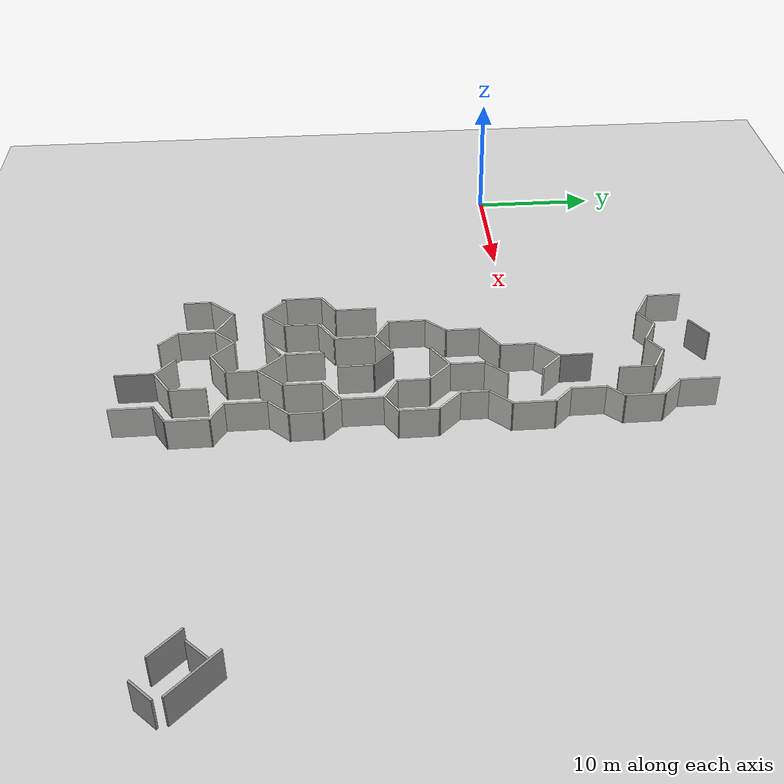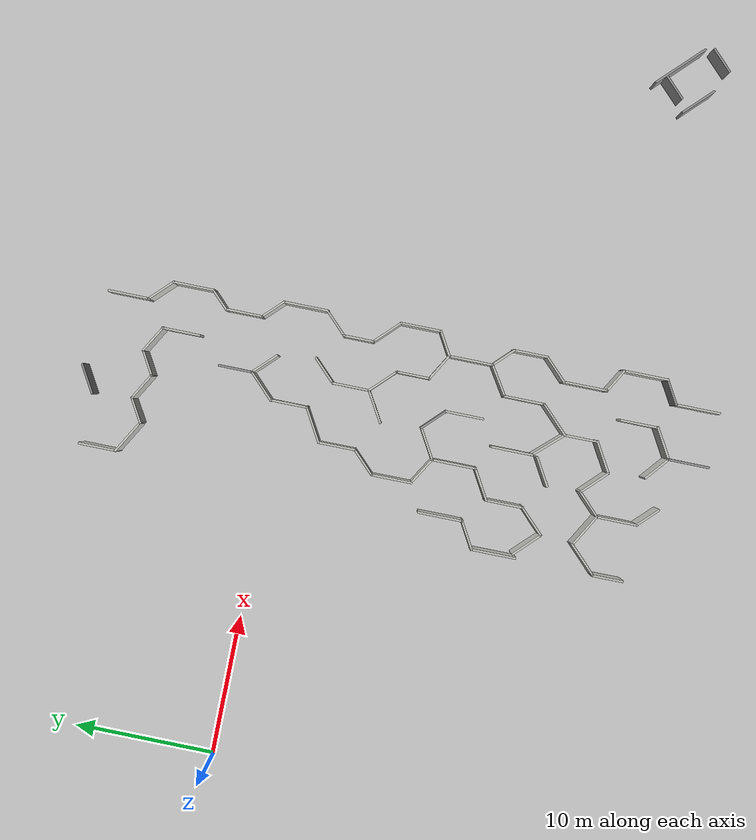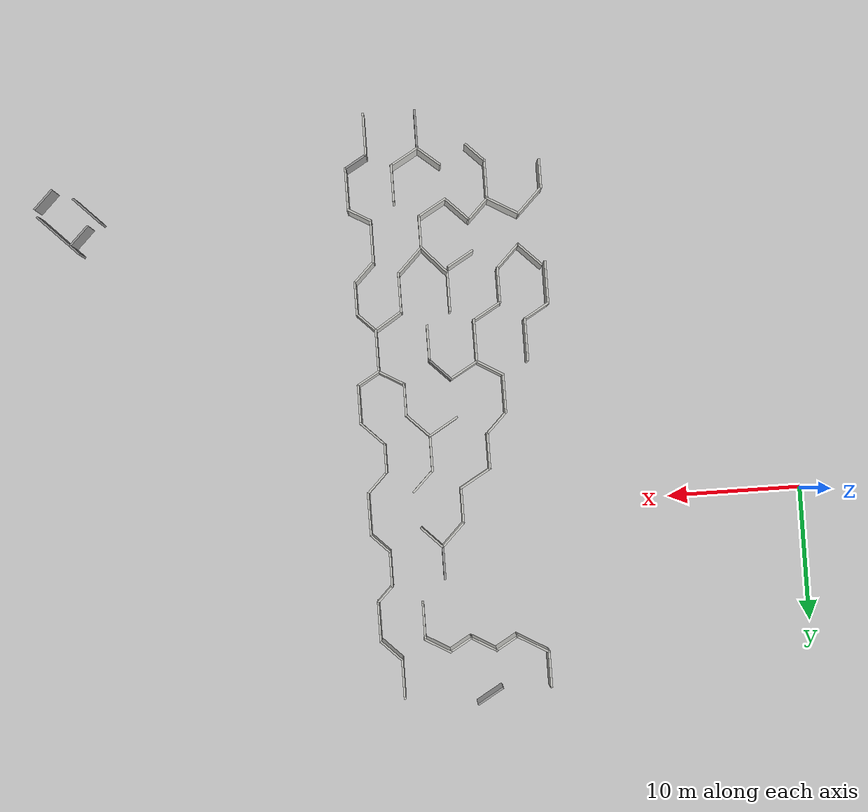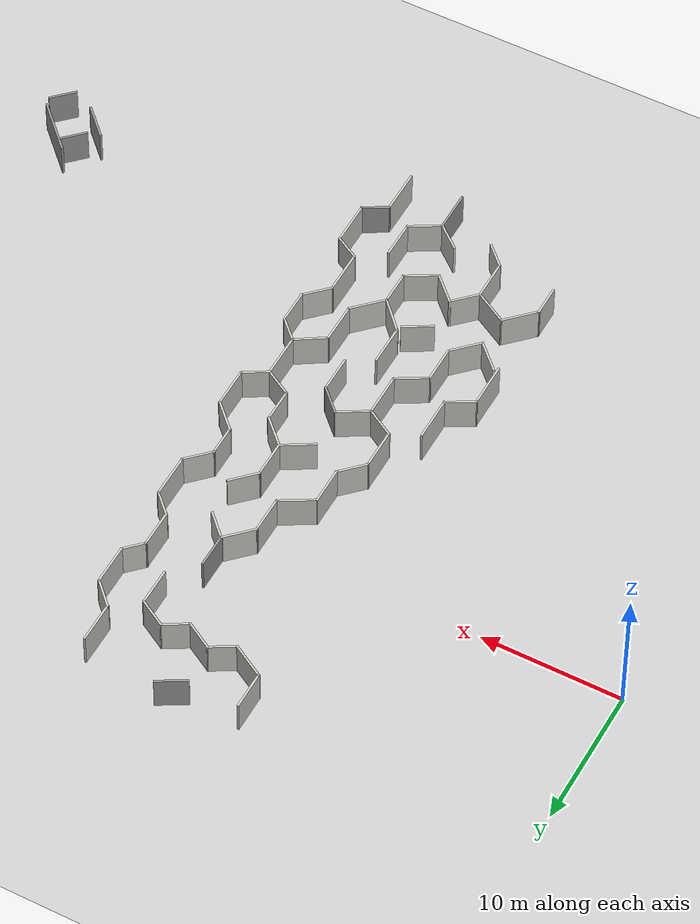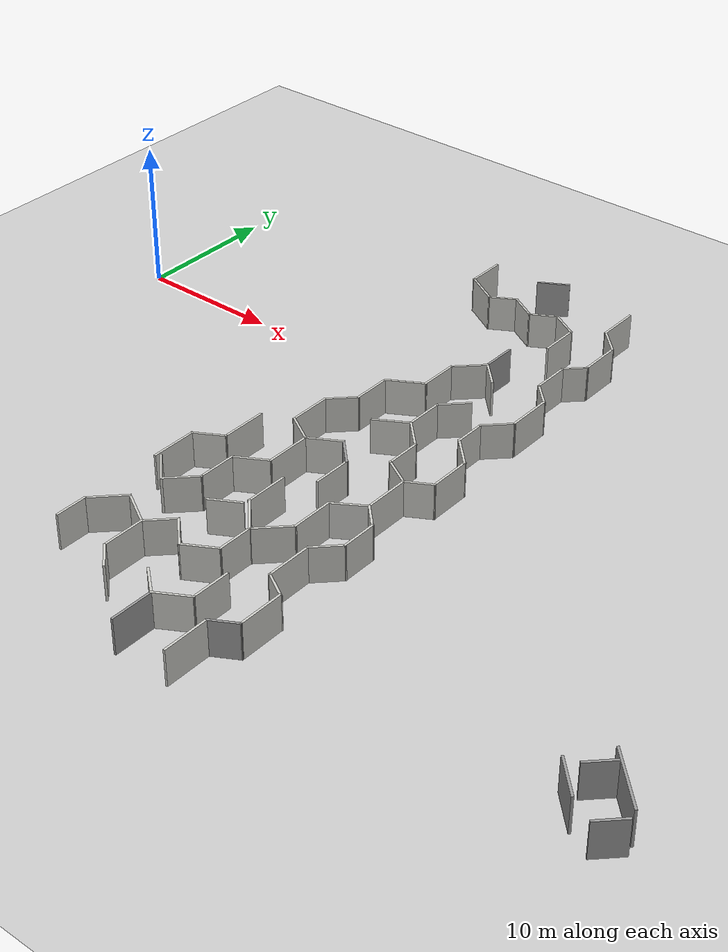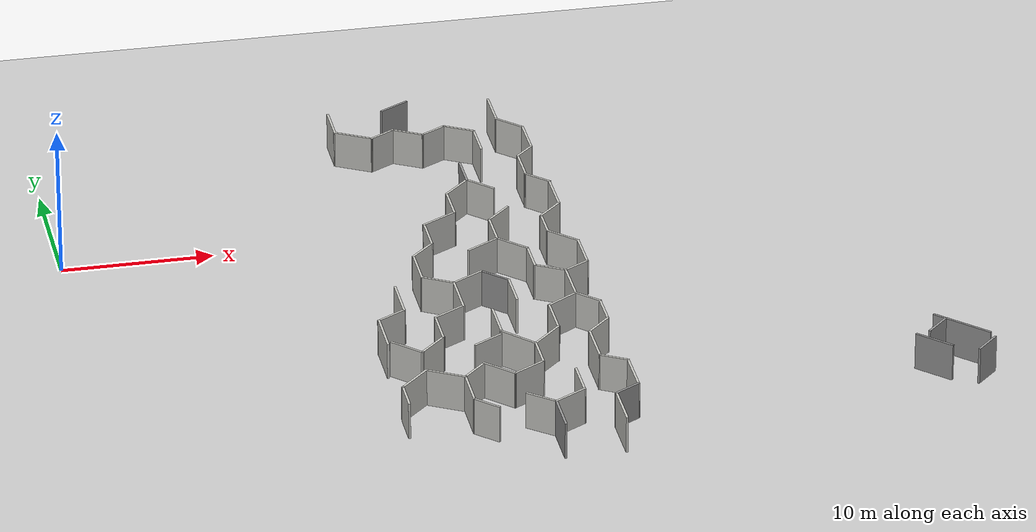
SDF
<sdf version="1.6">
 <world name="default">
  <model name="ground_plane">
   <pose>50 50 0 0 -0 0</pose>
   <static>1</static>
   <link name="link">
    <collision name="collision">
     <geometry><plane><normal>0 0 1</normal><size>100 100</size></plane></geometry>
     <surface><friction><ode><mu>100</mu><mu2>50</mu2></ode></friction></surface>
    </collision>
    <visual name="visual">
     <cast_shadows>0</cast_shadows>
     <geometry><plane><normal>0 0 1</normal><size>100 100</size></plane></geometry>
     <material>
      <script><uri>file://media/materials/scripts/gazebo.material</uri><name>Gazebo/Grey</name></script>
     </material>
    </visual>
   </link>
  </model>
  <model name="obs2_4">
   <pose>53.6513 -23.6227 0 0 -0 0</pose>
   <link name="Wall_0">
    <collision name="Wall_0_Collision">
     <geometry><box><size>2 0.15 2.5</size></box></geometry>
     <pose>0 0 1.25 0 -0 0</pose>
    </collision>
    <visual name="Wall_0_Visual">
     <pose>0 0 1.25 0 -0 0</pose>
     <geometry><box><size>2 0.15 2.5</size></box></geometry>
     <material>
      <script><uri>file://media/materials/scripts/gazebo.material</uri><name>Gazebo/Grey</name></script>
      <ambient>1 1 1 1</ambient>
     </material>
    </visual>
    <pose>-0.796332 1.10862 0 0 -0 0.785398</pose>
   </link>
   <link name="Wall_2">
    <collision name="Wall_2_Collision">
     <geometry><box><size>4.25 0.15 2.5</size></box></geometry>
     <pose>0 0 1.25 0 -0 0</pose>
    </collision>
    <visual name="Wall_2_Visual">
     <pose>0 0 1.25 0 -0 0</pose>
     <geometry><box><size>4.25 0.15 2.5</size></box></geometry>
     <material>
      <script><uri>file://media/materials/scripts/gazebo.material</uri><name>Gazebo/Grey</name></script>
      <ambient>1 1 1 1</ambient>
     </material>
    </visual>
    <pose>0.773928 0.982661 0 0 0 -0.785398</pose>
   </link>
   <link name="Wall_4">
    <collision name="Wall_4_Collision">
     <geometry><box><size>2.75 0.15 2.5</size></box></geometry>
     <pose>0 0 1.25 0 -0 0</pose>
    </collision>
    <visual name="Wall_4_Visual">
     <pose>0 0 1.25 0 -0 0</pose>
     <geometry><box><size>2.75 0.15 2.5</size></box></geometry>
     <material>
      <script><uri>file://media/materials/scripts/gazebo.material</uri><name>Gazebo/Grey</name></script>
      <ambient>1 1 1 1</ambient>
     </material>
    </visual>
    <pose>-1.45556 -0.740711 0 0 0 -0.785398</pose>
   </link>
   <link name="Wall_6">
    <collision name="Wall_6_Collision">
     <geometry><box><size>2 0.15 2.5</size></box></geometry>
     <pose>0 0 1.25 0 -0 0</pose>
    </collision>
    <visual name="Wall_6_Visual">
     <pose>0 0 1.25 0 -0 0</pose>
     <geometry><box><size>2 0.15 2.5</size></box></geometry>
     <material>
      <script><uri>file://media/materials/scripts/gazebo.material</uri><name>Gazebo/Grey</name></script>
      <ambient>1 1 1 1</ambient>
     </material>
    </visual>
    <pose>1.72073 -1.77816 0 0 -0 0.785398</pose>
   </link>
   <static>1</static>
  </model>
  <model name="maze_1">
   <pose>17.3845 3.82743 0 0 -0 1.57331</pose>
   <link name="Wall_100">
    <collision name="Wall_100_Collision">
     <geometry><box><size>2.75 0.15 2.5</size></box></geometry>
     <pose>0 0 1.25 0 -0 0</pose>
    </collision>
    <visual name="Wall_100_Visual">
     <pose>0 0 1.25 0 -0 0</pose>
     <geometry><box><size>2.75 0.15 2.5</size></box></geometry>
     <material>
      <script><uri>file://media/materials/scripts/gazebo.material</uri><name>Gazebo/CeilingTiled</name></script>
      <ambient>1 1 1 1</ambient>
     </material>
     <meta><layer>0</layer></meta>
    </visual>
    <pose>-22.8053 -10.8644 0 0 -0 -0.785398</pose>
   </link>
   <link name="Wall_101">
    <collision name="Wall_101_Collision">
     <geometry><box><size>3 0.15 2.5</size></box></geometry>
     <pose>0 0 1.25 0 -0 0</pose>
    </collision>
    <visual name="Wall_101_Visual">
     <pose>0 0 1.25 0 -0 0</pose>
     <geometry><box><size>3 0.15 2.5</size></box></geometry>
     <material>
      <script><uri>file://media/materials/scripts/gazebo.material</uri><name>Gazebo/CeilingTiled</name></script>
      <ambient>1 1 1 1</ambient>
     </material>
     <meta><layer>0</layer></meta>
    </visual>
    <pose>-20.4611 -11.7836 0 0 -0 0</pose>
   </link>
   <link name="Wall_102">
    <collision name="Wall_102_Collision">
     <geometry><box><size>2.50433 0.15 2.5</size></box></geometry>
     <pose>0 0 1.25 0 -0 0</pose>
    </collision>
    <visual name="Wall_102_Visual">
     <pose>0 0 1.25 0 -0 0</pose>
     <geometry><box><size>2.50433 0.15 2.5</size></box></geometry>
     <material>
      <script><uri>file://media/materials/scripts/gazebo.material</uri><name>Gazebo/CeilingTiled</name></script>
      <ambient>1 1 1 1</ambient>
     </material>
     <meta><layer>0</layer></meta>
    </visual>
    <pose>-18.4056 -12.7777 0 0 -0 -1.00558</pose>
   </link>
   <link name="Wall_104">
    <collision name="Wall_104_Collision">
     <geometry><box><size>3 0.15 2.5</size></box></geometry>
     <pose>0 0 1.25 0 -0 0</pose>
    </collision>
    <visual name="Wall_104_Visual">
     <pose>0 0 1.25 0 -0 0</pose>
     <geometry><box><size>3 0.15 2.5</size></box></geometry>
     <material>
      <script><uri>file://media/materials/scripts/gazebo.material</uri><name>Gazebo/CeilingTiled</name></script>
      <ambient>1 1 1 1</ambient>
     </material>
     <meta><layer>0</layer></meta>
    </visual>
    <pose>-20.321 -8.13238 0 0 -0 3.14159</pose>
   </link>
   <link name="Wall_105">
    <collision name="Wall_105_Collision">
     <geometry><box><size>2.83342 0.15 2.5</size></box></geometry>
     <pose>0 0 1.25 0 -0 0</pose>
    </collision>
    <visual name="Wall_105_Visual">
     <pose>0 0 1.25 0 -0 0</pose>
     <geometry><box><size>2.83342 0.15 2.5</size></box></geometry>
     <material>
      <script><uri>file://media/materials/scripts/gazebo.material</uri><name>Gazebo/CeilingTiled</name></script>
      <ambient>1 1 1 1</ambient>
     </material>
     <meta><layer>0</layer></meta>
    </visual>
    <pose>-22.7353 -9.03876 0 0 -0 -2.39989</pose>
   </link>
   <link name="Wall_107">
    <collision name="Wall_107_Collision">
     <geometry><box><size>2.25 0.15 2.5</size></box></geometry>
     <pose>0 0 1.25 0 -0 0</pose>
    </collision>
    <visual name="Wall_107_Visual">
     <pose>0 0 1.25 0 -0 0</pose>
     <geometry><box><size>2.25 0.15 2.5</size></box></geometry>
     <material>
      <script><uri>file://media/materials/scripts/gazebo.material</uri><name>Gazebo/CeilingTiled</name></script>
      <ambient>1 1 1 1</ambient>
     </material>
     <meta><layer>0</layer></meta>
    </visual>
    <pose>-22.6837 -7.08881 0 0 -0 -1.0472</pose>
   </link>
   <link name="Wall_109">
    <collision name="Wall_109_Collision">
     <geometry><box><size>2.75 0.15 2.5</size></box></geometry>
     <pose>0 0 1.25 0 -0 0</pose>
    </collision>
    <visual name="Wall_109_Visual">
     <pose>0 0 1.25 0 -0 0</pose>
     <geometry><box><size>2.75 0.15 2.5</size></box></geometry>
     <material>
      <script><uri>file://media/materials/scripts/gazebo.material</uri><name>Gazebo/CeilingTiled</name></script>
      <ambient>1 1 1 1</ambient>
     </material>
     <meta><layer>0</layer></meta>
    </visual>
    <pose>-16.5382 -9.92253 0 0 -0 0</pose>
   </link>
   <link name="Wall_110">
    <collision name="Wall_110_Collision">
     <geometry><box><size>2.25 0.15 2.5</size></box></geometry>
     <pose>0 0 1.25 0 -0 0</pose>
    </collision>
    <visual name="Wall_110_Visual">
     <pose>0 0 1.25 0 -0 0</pose>
     <geometry><box><size>2.25 0.15 2.5</size></box></geometry>
     <material>
      <script><uri>file://media/materials/scripts/gazebo.material</uri><name>Gazebo/Grey</name></script>
      <ambient>1 1 1 1</ambient>
     </material>
     <meta><layer>0</layer></meta>
    </visual>
    <pose>-14.4957 -9.18007 0 0 -0 0.785398</pose>
   </link>
   <link name="Wall_111">
    <collision name="Wall_111_Collision">
     <geometry><box><size>2.5 0.15 2.5</size></box></geometry>
     <pose>0 0 1.25 0 -0 0</pose>
    </collision>
    <visual name="Wall_111_Visual">
     <pose>0 0 1.25 0 -0 0</pose>
     <geometry><box><size>2.5 0.15 2.5</size></box></geometry>
     <material>
      <script><uri>file://media/materials/scripts/gazebo.material</uri><name>Gazebo/CeilingTiled</name></script>
      <ambient>1 1 1 1</ambient>
     </material>
     <meta><layer>0</layer></meta>
    </visual>
    <pose>-14.3408 -7.42003 0 0 -0 2.0944</pose>
   </link>
   <link name="Wall_112">
    <collision name="Wall_112_Collision">
     <geometry><box><size>3.25 0.15 2.5</size></box></geometry>
     <pose>0 0 1.25 0 -0 0</pose>
    </collision>
    <visual name="Wall_112_Visual">
     <pose>0 0 1.25 0 -0 0</pose>
     <geometry><box><size>3.25 0.15 2.5</size></box></geometry>
     <material>
      <script><uri>file://media/materials/scripts/gazebo.material</uri><name>Gazebo/CeilingTiled</name></script>
      <ambient>1 1 1 1</ambient>
     </material>
     <meta><layer>0</layer></meta>
    </visual>
    <pose>-16.4783 -6.40245 0 0 -0 3.14159</pose>
   </link>
   <link name="Wall_113">
    <collision name="Wall_113_Collision">
     <geometry><box><size>2.5 0.15 2.5</size></box></geometry>
     <pose>0 0 1.25 0 -0 0</pose>
    </collision>
    <visual name="Wall_113_Visual">
     <pose>0 0 1.25 0 -0 0</pose>
     <geometry><box><size>2.5 0.15 2.5</size></box></geometry>
     <material>
      <script><uri>file://media/materials/scripts/gazebo.material</uri><name>Gazebo/CeilingTiled</name></script>
      <ambient>1 1 1 1</ambient>
     </material>
     <meta><layer>0</layer></meta>
    </visual>
    <pose>-18.6158 -5.38487 0 0 -0 2.0944</pose>
   </link>
   <link name="Wall_114">
    <collision name="Wall_114_Collision">
     <geometry><box><size>2.75 0.15 2.5</size></box></geometry>
     <pose>0 0 1.25 0 -0 0</pose>
    </collision>
    <visual name="Wall_114_Visual">
     <pose>0 0 1.25 0 -0 0</pose>
     <geometry><box><size>2.75 0.15 2.5</size></box></geometry>
     <material>
      <script><uri>file://media/materials/scripts/gazebo.material</uri><name>Gazebo/CeilingTiled</name></script>
      <ambient>1 1 1 1</ambient>
     </material>
     <meta><layer>0</layer></meta>
    </visual>
    <pose>-20.5033 -4.36729 0 0 -0 3.14159</pose>
   </link>
   <link name="Wall_115">
    <collision name="Wall_115_Collision">
     <geometry><box><size>2.5 0.15 2.5</size></box></geometry>
     <pose>0 0 1.25 0 -0 0</pose>
    </collision>
    <visual name="Wall_115_Visual">
     <pose>0 0 1.25 0 -0 0</pose>
     <geometry><box><size>2.5 0.15 2.5</size></box></geometry>
     <material>
      <script><uri>file://media/materials/scripts/gazebo.material</uri><name>Gazebo/CeilingTiled</name></script>
      <ambient>1 1 1 1</ambient>
     </material>
     <meta><layer>0</layer></meta>
    </visual>
    <pose>-22.6341 -3.53644 0 0 -0 2.35619</pose>
   </link>
   <link name="Wall_116">
    <collision name="Wall_116_Collision">
     <geometry><box><size>2.5 0.15 2.5</size></box></geometry>
     <pose>0 0 1.25 0 -0 0</pose>
    </collision>
    <visual name="Wall_116_Visual">
     <pose>0 0 1.25 0 -0 0</pose>
     <geometry><box><size>2.5 0.15 2.5</size></box></geometry>
     <material>
      <script><uri>file://media/materials/scripts/gazebo.material</uri><name>Gazebo/CeilingTiled</name></script>
      <ambient>1 1 1 1</ambient>
     </material>
     <meta><layer>0</layer></meta>
    </visual>
    <pose>-22.6341 -1.87474 0 0 -0 0.785398</pose>
   </link>
   <link name="Wall_122">
    <collision name="Wall_122_Collision">
     <geometry><box><size>3.25 0.15 2.5</size></box></geometry>
     <pose>0 0 1.25 0 -0 0</pose>
    </collision>
    <visual name="Wall_122_Visual">
     <pose>0 0 1.25 0 -0 0</pose>
     <geometry><box><size>3.25 0.15 2.5</size></box></geometry>
     <material>
      <script><uri>file://media/materials/scripts/gazebo.material</uri><name>Gazebo/CeilingTiled</name></script>
      <ambient>1 1 1 1</ambient>
     </material>
     <meta><layer>0</layer></meta>
    </visual>
    <pose>-16.2961 -2.59917 0 0 -0 3.14159</pose>
   </link>
   <link name="Wall_123">
    <collision name="Wall_123_Collision">
     <geometry><box><size>2.25 0.15 2.5</size></box></geometry>
     <pose>0 0 1.25 0 -0 0</pose>
    </collision>
    <visual name="Wall_123_Visual">
     <pose>0 0 1.25 0 -0 0</pose>
     <geometry><box><size>2.25 0.15 2.5</size></box></geometry>
     <material>
      <script><uri>file://media/materials/scripts/gazebo.material</uri><name>Gazebo/CeilingTiled</name></script>
      <ambient>1 1 1 1</ambient>
     </material>
     <meta><layer>0</layer></meta>
    </visual>
    <pose>-18.3711 -1.68985 0 0 -0 2.0944</pose>
   </link>
   <link name="Wall_124">
    <collision name="Wall_124_Collision">
     <geometry><box><size>3.25 0.15 2.5</size></box></geometry>
     <pose>0 0 1.25 0 -0 0</pose>
    </collision>
    <visual name="Wall_124_Visual">
     <pose>0 0 1.25 0 -0 0</pose>
     <geometry><box><size>3.25 0.15 2.5</size></box></geometry>
     <material>
      <script><uri>file://media/materials/scripts/gazebo.material</uri><name>Gazebo/CeilingTiled</name></script>
      <ambient>1 1 1 1</ambient>
     </material>
     <meta><layer>0</layer></meta>
    </visual>
    <pose>-20.4461 -0.780521 0 0 -0 3.14159</pose>
   </link>
   <link name="Wall_126">
    <collision name="Wall_126_Collision">
     <geometry><box><size>2.5 0.15 2.5</size></box></geometry>
     <pose>0 0 1.25 0 -0 0</pose>
    </collision>
    <visual name="Wall_126_Visual">
     <pose>0 0 1.25 0 -0 0</pose>
     <geometry><box><size>2.5 0.15 2.5</size></box></geometry>
     <material>
      <script><uri>file://media/materials/scripts/gazebo.material</uri><name>Gazebo/Grey</name></script>
      <ambient>1 1 1 1</ambient>
     </material>
     <meta><layer>0</layer></meta>
    </visual>
    <pose>-0.135221 -9.92253 0 0 -0 3.14159</pose>
   </link>
   <link name="Wall_127">
    <collision name="Wall_127_Collision">
     <geometry><box><size>2.5 0.15 2.5</size></box></geometry>
     <pose>0 0 1.25 0 -0 0</pose>
    </collision>
    <visual name="Wall_127_Visual">
     <pose>0 0 1.25 0 -0 0</pose>
     <geometry><box><size>2.5 0.15 2.5</size></box></geometry>
     <material>
      <script><uri>file://media/materials/scripts/gazebo.material</uri><name>Gazebo/CeilingTiled</name></script>
      <ambient>1 1 1 1</ambient>
     </material>
     <meta><layer>0</layer></meta>
    </visual>
    <pose>-2.14107 -9.09168 0 0 -0 2.35619</pose>
   </link>
   <link name="Wall_128">
    <collision name="Wall_128_Collision">
     <geometry><box><size>2.75 0.15 2.5</size></box></geometry>
     <pose>0 0 1.25 0 -0 0</pose>
    </collision>
    <visual name="Wall_128_Visual">
     <pose>0 0 1.25 0 -0 0</pose>
     <geometry><box><size>2.75 0.15 2.5</size></box></geometry>
     <material>
      <script><uri>file://media/materials/scripts/gazebo.material</uri><name>Gazebo/CeilingTiled</name></script>
      <ambient>1 1 1 1</ambient>
     </material>
     <meta><layer>0</layer></meta>
    </visual>
    <pose>-4.27192 -8.26083 0 0 -0 3.14159</pose>
   </link>
   <link name="Wall_129">
    <collision name="Wall_129_Collision">
     <geometry><box><size>2.75 0.15 2.5</size></box></geometry>
     <pose>0 0 1.25 0 -0 0</pose>
    </collision>
    <visual name="Wall_129_Visual">
     <pose>0 0 1.25 0 -0 0</pose>
     <geometry><box><size>2.75 0.15 2.5</size></box></geometry>
     <material>
      <script><uri>file://media/materials/scripts/gazebo.material</uri><name>Gazebo/CeilingTiled</name></script>
      <ambient>1 1 1 1</ambient>
     </material>
     <meta><layer>0</layer></meta>
    </visual>
    <pose>-6.22192 -7.135 0 0 -0 2.0944</pose>
   </link>
   <link name="Wall_130">
    <collision name="Wall_130_Collision">
     <geometry><box><size>2.75 0.15 2.5</size></box></geometry>
     <pose>0 0 1.25 0 -0 0</pose>
    </collision>
    <visual name="Wall_130_Visual">
     <pose>0 0 1.25 0 -0 0</pose>
     <geometry><box><size>2.75 0.15 2.5</size></box></geometry>
     <material>
      <script><uri>file://media/materials/scripts/gazebo.material</uri><name>Gazebo/CeilingTiled</name></script>
      <ambient>1 1 1 1</ambient>
     </material>
     <meta><layer>0</layer></meta>
    </visual>
    <pose>-8.17192 -6.00916 0 0 -0 3.14159</pose>
   </link>
   <link name="Wall_131">
    <collision name="Wall_131_Collision">
     <geometry><box><size>2.25 0.15 2.5</size></box></geometry>
     <pose>0 0 1.25 0 -0 0</pose>
    </collision>
    <visual name="Wall_131_Visual">
     <pose>0 0 1.25 0 -0 0</pose>
     <geometry><box><size>2.25 0.15 2.5</size></box></geometry>
     <material>
      <script><uri>file://media/materials/scripts/gazebo.material</uri><name>Gazebo/CeilingTiled</name></script>
      <ambient>1 1 1 1</ambient>
     </material>
     <meta><layer>0</layer></meta>
    </visual>
    <pose>-10.2144 -5.2667 0 0 -0 2.35619</pose>
   </link>
   <link name="Wall_132">
    <collision name="Wall_132_Collision">
     <geometry><box><size>3 0.15 2.5</size></box></geometry>
     <pose>0 0 1.25 0 -0 0</pose>
    </collision>
    <visual name="Wall_132_Visual">
     <pose>0 0 1.25 0 -0 0</pose>
     <geometry><box><size>3 0.15 2.5</size></box></geometry>
     <material>
      <script><uri>file://media/materials/scripts/gazebo.material</uri><name>Gazebo/CeilingTiled</name></script>
      <ambient>1 1 1 1</ambient>
     </material>
     <meta><layer>0</layer></meta>
    </visual>
    <pose>-12.3818 -4.52424 0 0 -0 3.14159</pose>
   </link>
   <link name="Wall_133">
    <collision name="Wall_133_Collision">
     <geometry><box><size>2.33753 0.15 2.5</size></box></geometry>
     <pose>0 0 1.25 0 -0 0</pose>
    </collision>
    <visual name="Wall_133_Visual">
     <pose>0 0 1.25 0 -0 0</pose>
     <geometry><box><size>2.33753 0.15 2.5</size></box></geometry>
     <material>
      <script><uri>file://media/materials/scripts/gazebo.material</uri><name>Gazebo/CeilingTiled</name></script>
      <ambient>1 1 1 1</ambient>
     </material>
     <meta><layer>0</layer></meta>
    </visual>
    <pose>-14.3676 -5.46334 0 0 -0 -2.10906</pose>
   </link>
   <link name="Wall_135">
    <collision name="Wall_135_Collision">
     <geometry><box><size>2.22826 0.15 2.5</size></box></geometry>
     <pose>0 0 1.25 0 -0 0</pose>
    </collision>
    <visual name="Wall_135_Visual">
     <pose>0 0 1.25 0 -0 0</pose>
     <geometry><box><size>2.22826 0.15 2.5</size></box></geometry>
     <material>
      <script><uri>file://media/materials/scripts/gazebo.material</uri><name>Gazebo/CeilingTiled</name></script>
      <ambient>1 1 1 1</ambient>
     </material>
     <meta><layer>0</layer></meta>
    </visual>
    <pose>-2.04743 -10.6549 0 0 -0 0.782082</pose>
   </link>
   <link name="Wall_137">
    <collision name="Wall_137_Collision">
     <geometry><box><size>2.75 0.15 2.5</size></box></geometry>
     <pose>0 0 1.25 0 -0 0</pose>
    </collision>
    <visual name="Wall_137_Visual">
     <pose>0 0 1.25 0 -0 0</pose>
     <geometry><box><size>2.75 0.15 2.5</size></box></geometry>
     <material>
      <script><uri>file://media/materials/scripts/gazebo.material</uri><name>Gazebo/CeilingTiled</name></script>
      <ambient>1 1 1 1</ambient>
     </material>
     <meta><layer>0</layer></meta>
    </visual>
    <pose>4.12993 -11.7127 0 0 -0 0</pose>
   </link>
   <link name="Wall_138">
    <collision name="Wall_138_Collision">
     <geometry><box><size>2.25 0.15 2.5</size></box></geometry>
     <pose>0 0 1.25 0 -0 0</pose>
    </collision>
    <visual name="Wall_138_Visual">
     <pose>0 0 1.25 0 -0 0</pose>
     <geometry><box><size>2.25 0.15 2.5</size></box></geometry>
     <material>
      <script><uri>file://media/materials/scripts/gazebo.material</uri><name>Gazebo/CeilingTiled</name></script>
      <ambient>1 1 1 1</ambient>
     </material>
     <meta><layer>0</layer></meta>
    </visual>
    <pose>5.95493 -10.8034 0 0 -0 1.0472</pose>
   </link>
   <link name="Wall_139">
    <collision name="Wall_139_Collision">
     <geometry><box><size>2 0.15 2.5</size></box></geometry>
     <pose>0 0 1.25 0 -0 0</pose>
    </collision>
    <visual name="Wall_139_Visual">
     <pose>0 0 1.25 0 -0 0</pose>
     <geometry><box><size>2 0.15 2.5</size></box></geometry>
     <material>
      <script><uri>file://media/materials/scripts/gazebo.material</uri><name>Gazebo/CeilingTiled</name></script>
      <ambient>1 1 1 1</ambient>
     </material>
     <meta><layer>0</layer></meta>
    </visual>
    <pose>6.01743 -9.09296 0 0 -0 2.0944</pose>
   </link>
   <link name="Wall_140">
    <collision name="Wall_140_Collision">
     <geometry><box><size>2.25 0.15 2.5</size></box></geometry>
     <pose>0 0 1.25 0 -0 0</pose>
    </collision>
    <visual name="Wall_140_Visual">
     <pose>0 0 1.25 0 -0 0</pose>
     <geometry><box><size>2.25 0.15 2.5</size></box></geometry>
     <material>
      <script><uri>file://media/materials/scripts/gazebo.material</uri><name>Gazebo/CeilingTiled</name></script>
      <ambient>1 1 1 1</ambient>
     </material>
     <meta><layer>0</layer></meta>
    </visual>
    <pose>6.07993 -7.38256 0 0 -0 1.0472</pose>
   </link>
   <link name="Wall_141">
    <collision name="Wall_141_Collision">
     <geometry><box><size>2 0.15 2.5</size></box></geometry>
     <pose>0 0 1.25 0 -0 0</pose>
    </collision>
    <visual name="Wall_141_Visual">
     <pose>0 0 1.25 0 -0 0</pose>
     <geometry><box><size>2 0.15 2.5</size></box></geometry>
     <material>
      <script><uri>file://media/materials/scripts/gazebo.material</uri><name>Gazebo/CeilingTiled</name></script>
      <ambient>1 1 1 1</ambient>
     </material>
     <meta><layer>0</layer></meta>
    </visual>
    <pose>6.14243 -5.67216 0 0 -0 2.0944</pose>
   </link>
   <link name="Wall_142">
    <collision name="Wall_142_Collision">
     <geometry><box><size>2.75 0.15 2.5</size></box></geometry>
     <pose>0 0 1.25 0 -0 0</pose>
    </collision>
    <visual name="Wall_142_Visual">
     <pose>0 0 1.25 0 -0 0</pose>
     <geometry><box><size>2.75 0.15 2.5</size></box></geometry>
     <material>
      <script><uri>file://media/materials/scripts/gazebo.material</uri><name>Gazebo/CeilingTiled</name></script>
      <ambient>1 1 1 1</ambient>
     </material>
     <meta><layer>0</layer></meta>
    </visual>
    <pose>6.32993 -3.74525 0 0 -0 1.0472</pose>
   </link>
   <link name="Wall_143">
    <collision name="Wall_143_Collision">
     <geometry><box><size>2.75 0.15 2.5</size></box></geometry>
     <pose>0 0 1.25 0 -0 0</pose>
    </collision>
    <visual name="Wall_143_Visual">
     <pose>0 0 1.25 0 -0 0</pose>
     <geometry><box><size>2.75 0.15 2.5</size></box></geometry>
     <material>
      <script><uri>file://media/materials/scripts/gazebo.material</uri><name>Gazebo/CeilingTiled</name></script>
      <ambient>1 1 1 1</ambient>
     </material>
     <meta><layer>0</layer></meta>
    </visual>
    <pose>8.27993 -2.61942 0 0 -0 0</pose>
   </link>
   <link name="Wall_15">
    <collision name="Wall_15_Collision">
     <geometry><box><size>3 0.15 2.5</size></box></geometry>
     <pose>0 0 1.25 0 -0 0</pose>
    </collision>
    <visual name="Wall_15_Visual">
     <pose>0 0 1.25 0 -0 0</pose>
     <geometry><box><size>3 0.15 2.5</size></box></geometry>
     <material>
      <script><uri>file://media/materials/scripts/gazebo.material</uri><name>Gazebo/CeilingTiled</name></script>
      <ambient>1 1 1 1</ambient>
     </material>
     <meta><layer>0</layer></meta>
    </visual>
    <pose>8.24595 -13.5355 0 0 -0 3.14159</pose>
   </link>
   <link name="Wall_16">
    <collision name="Wall_16_Collision">
     <geometry><box><size>2.25 0.15 2.5</size></box></geometry>
     <pose>0 0 1.25 0 -0 0</pose>
    </collision>
    <visual name="Wall_16_Visual">
     <pose>0 0 1.25 0 -0 0</pose>
     <geometry><box><size>2.25 0.15 2.5</size></box></geometry>
     <material>
      <script><uri>file://media/materials/scripts/gazebo.material</uri><name>Gazebo/CeilingTiled</name></script>
      <ambient>1 1 1 1</ambient>
     </material>
     <meta><layer>0</layer></meta>
    </visual>
    <pose>6.07849 -14.2779 0 0 -0 -2.35619</pose>
   </link>
   <link name="Wall_17">
    <collision name="Wall_17_Collision">
     <geometry><box><size>3 0.15 2.5</size></box></geometry>
     <pose>0 0 1.25 0 -0 0</pose>
    </collision>
    <visual name="Wall_17_Visual">
     <pose>0 0 1.25 0 -0 0</pose>
     <geometry><box><size>3 0.15 2.5</size></box></geometry>
     <material>
      <script><uri>file://media/materials/scripts/gazebo.material</uri><name>Gazebo/CeilingTiled</name></script>
      <ambient>1 1 1 1</ambient>
     </material>
     <meta><layer>0</layer></meta>
    </visual>
    <pose>3.91103 -15.0204 0 0 -0 3.14159</pose>
   </link>
   <link name="Wall_18">
    <collision name="Wall_18_Collision">
     <geometry><box><size>1.75 0.15 2.5</size></box></geometry>
     <pose>0 0 1.25 0 -0 0</pose>
    </collision>
    <visual name="Wall_18_Visual">
     <pose>0 0 1.25 0 -0 0</pose>
     <geometry><box><size>1.75 0.15 2.5</size></box></geometry>
     <material>
      <script><uri>file://media/materials/scripts/gazebo.material</uri><name>Gazebo/CeilingTiled</name></script>
      <ambient>1 1 1 1</ambient>
     </material>
     <meta><layer>0</layer></meta>
    </visual>
    <pose>1.92034 -14.4547 0 0 -0 2.35619</pose>
   </link>
   <link name="Wall_19">
    <collision name="Wall_19_Collision">
     <geometry><box><size>2.75 0.15 2.5</size></box></geometry>
     <pose>0 0 1.25 0 -0 0</pose>
    </collision>
    <visual name="Wall_19_Visual">
     <pose>0 0 1.25 0 -0 0</pose>
     <geometry><box><size>2.75 0.15 2.5</size></box></geometry>
     <material>
      <script><uri>file://media/materials/scripts/gazebo.material</uri><name>Gazebo/CeilingTiled</name></script>
      <ambient>1 1 1 1</ambient>
     </material>
     <meta><layer>0</layer></meta>
    </visual>
    <pose>0.054658 -13.889 0 0 -0 3.14159</pose>
   </link>
   <link name="Wall_20">
    <collision name="Wall_20_Collision">
     <geometry><box><size>2 0.15 2.5</size></box></geometry>
     <pose>0 0 1.25 0 -0 0</pose>
    </collision>
    <visual name="Wall_20_Visual">
     <pose>0 0 1.25 0 -0 0</pose>
     <geometry><box><size>2 0.15 2.5</size></box></geometry>
     <material>
      <script><uri>file://media/materials/scripts/gazebo.material</uri><name>Gazebo/CeilingTiled</name></script>
      <ambient>1 1 1 1</ambient>
     </material>
     <meta><layer>0</layer></meta>
    </visual>
    <pose>-1.89942 -14.5431 0 0 -0 -2.35619</pose>
   </link>
   <link name="Wall_21">
    <collision name="Wall_21_Collision">
     <geometry><box><size>3.25 0.15 2.5</size></box></geometry>
     <pose>0 0 1.25 0 -0 0</pose>
    </collision>
    <visual name="Wall_21_Visual">
     <pose>0 0 1.25 0 -0 0</pose>
     <geometry><box><size>3.25 0.15 2.5</size></box></geometry>
     <material>
      <script><uri>file://media/materials/scripts/gazebo.material</uri><name>Gazebo/CeilingTiled</name></script>
      <ambient>1 1 1 1</ambient>
     </material>
     <meta><layer>0</layer></meta>
    </visual>
    <pose>-4.10349 -15.1972 0 0 -0 3.14159</pose>
   </link>
   <link name="Wall_22">
    <collision name="Wall_22_Collision">
     <geometry><box><size>2.25 0.15 2.5</size></box></geometry>
     <pose>0 0 1.25 0 -0 0</pose>
    </collision>
    <visual name="Wall_22_Visual">
     <pose>0 0 1.25 0 -0 0</pose>
     <geometry><box><size>2.25 0.15 2.5</size></box></geometry>
     <material>
      <script><uri>file://media/materials/scripts/gazebo.material</uri><name>Gazebo/CeilingTiled</name></script>
      <ambient>1 1 1 1</ambient>
     </material>
     <meta><layer>0</layer></meta>
    </visual>
    <pose>-6.39595 -14.4547 0 0 -0 2.35619</pose>
   </link>
   <link name="Wall_23">
    <collision name="Wall_23_Collision">
     <geometry><box><size>2.25 0.15 2.5</size></box></geometry>
     <pose>0 0 1.25 0 -0 0</pose>
    </collision>
    <visual name="Wall_23_Visual">
     <pose>0 0 1.25 0 -0 0</pose>
     <geometry><box><size>2.25 0.15 2.5</size></box></geometry>
     <material>
      <script><uri>file://media/materials/scripts/gazebo.material</uri><name>Gazebo/CeilingTiled</name></script>
      <ambient>1 1 1 1</ambient>
     </material>
     <meta><layer>0</layer></meta>
    </visual>
    <pose>-8.18841 -13.7122 0 0 -0 3.14159</pose>
   </link>
   <link name="Wall_24">
    <collision name="Wall_24_Collision">
     <geometry><box><size>2.5 0.15 2.5</size></box></geometry>
     <pose>0 0 1.25 0 -0 0</pose>
    </collision>
    <visual name="Wall_24_Visual">
     <pose>0 0 1.25 0 -0 0</pose>
     <geometry><box><size>2.5 0.15 2.5</size></box></geometry>
     <material>
      <script><uri>file://media/materials/scripts/gazebo.material</uri><name>Gazebo/CeilingTiled</name></script>
      <ambient>1 1 1 1</ambient>
     </material>
     <meta><layer>0</layer></meta>
    </visual>
    <pose>-10.0693 -14.5431 0 0 -0 -2.35619</pose>
   </link>
   <link name="Wall_25">
    <collision name="Wall_25_Collision">
     <geometry><box><size>3 0.15 2.5</size></box></geometry>
     <pose>0 0 1.25 0 -0 0</pose>
    </collision>
    <visual name="Wall_25_Visual">
     <pose>0 0 1.25 0 -0 0</pose>
     <geometry><box><size>3 0.15 2.5</size></box></geometry>
     <material>
      <script><uri>file://media/materials/scripts/gazebo.material</uri><name>Gazebo/CeilingTiled</name></script>
      <ambient>1 1 1 1</ambient>
     </material>
     <meta><layer>0</layer></meta>
    </visual>
    <pose>-12.3251 -15.3739 0 0 -0 3.14159</pose>
   </link>
   <link name="Wall_26">
    <collision name="Wall_26_Collision">
     <geometry><box><size>2 0.15 2.5</size></box></geometry>
     <pose>0 0 1.25 0 -0 0</pose>
    </collision>
    <visual name="Wall_26_Visual">
     <pose>0 0 1.25 0 -0 0</pose>
     <geometry><box><size>2 0.15 2.5</size></box></geometry>
     <material>
      <script><uri>file://media/materials/scripts/gazebo.material</uri><name>Gazebo/CeilingTiled</name></script>
      <ambient>1 1 1 1</ambient>
     </material>
     <meta><layer>0</layer></meta>
    </visual>
    <pose>-14.2126 -14.5729 0 0 -0 2.0944</pose>
   </link>
   <link name="Wall_27">
    <collision name="Wall_27_Collision">
     <geometry><box><size>2.25 0.15 2.5</size></box></geometry>
     <pose>0 0 1.25 0 -0 0</pose>
    </collision>
    <visual name="Wall_27_Visual">
     <pose>0 0 1.25 0 -0 0</pose>
     <geometry><box><size>2.25 0.15 2.5</size></box></geometry>
     <material>
      <script><uri>file://media/materials/scripts/gazebo.material</uri><name>Gazebo/CeilingTiled</name></script>
      <ambient>1 1 1 1</ambient>
     </material>
     <meta><layer>0</layer></meta>
    </visual>
    <pose>-14.1501 -12.8625 0 0 -0 1.0472</pose>
   </link>
   <link name="Wall_28">
    <collision name="Wall_28_Collision">
     <geometry><box><size>2.5 0.15 2.5</size></box></geometry>
     <pose>0 0 1.25 0 -0 0</pose>
    </collision>
    <visual name="Wall_28_Visual">
     <pose>0 0 1.25 0 -0 0</pose>
     <geometry><box><size>2.5 0.15 2.5</size></box></geometry>
     <material>
      <script><uri>file://media/materials/scripts/gazebo.material</uri><name>Gazebo/CeilingTiled</name></script>
      <ambient>1 1 1 1</ambient>
     </material>
     <meta><layer>0</layer></meta>
    </visual>
    <pose>-12.4501 -11.9531 0 0 -0 0</pose>
   </link>
   <link name="Wall_29">
    <collision name="Wall_29_Collision">
     <geometry><box><size>2.5 0.15 2.5</size></box></geometry>
     <pose>0 0 1.25 0 -0 0</pose>
    </collision>
    <visual name="Wall_29_Visual">
     <pose>0 0 1.25 0 -0 0</pose>
     <geometry><box><size>2.5 0.15 2.5</size></box></geometry>
     <material>
      <script><uri>file://media/materials/scripts/gazebo.material</uri><name>Gazebo/CeilingTiled</name></script>
      <ambient>1 1 1 1</ambient>
     </material>
     <meta><layer>0</layer></meta>
    </visual>
    <pose>-10.4443 -11.1223 0 0 -0 0.785398</pose>
   </link>
   <link name="Wall_30">
    <collision name="Wall_30_Collision">
     <geometry><box><size>2.75 0.15 2.5</size></box></geometry>
     <pose>0 0 1.25 0 -0 0</pose>
    </collision>
    <visual name="Wall_30_Visual">
     <pose>0 0 1.25 0 -0 0</pose>
     <geometry><box><size>2.75 0.15 2.5</size></box></geometry>
     <material>
      <script><uri>file://media/materials/scripts/gazebo.material</uri><name>Gazebo/CeilingTiled</name></script>
      <ambient>1 1 1 1</ambient>
     </material>
     <meta><layer>0</layer></meta>
    </visual>
    <pose>-8.31341 -10.2914 0 0 -0 0</pose>
   </link>
   <link name="Wall_31">
    <collision name="Wall_31_Collision">
     <geometry><box><size>2.25 0.15 2.5</size></box></geometry>
     <pose>0 0 1.25 0 -0 0</pose>
    </collision>
    <visual name="Wall_31_Visual">
     <pose>0 0 1.25 0 -0 0</pose>
     <geometry><box><size>2.25 0.15 2.5</size></box></geometry>
     <material>
      <script><uri>file://media/materials/scripts/gazebo.material</uri><name>Gazebo/CeilingTiled</name></script>
      <ambient>1 1 1 1</ambient>
     </material>
     <meta><layer>0</layer></meta>
    </visual>
    <pose>-6.27095 -11.0339 0 0 -0 -0.785398</pose>
   </link>
   <link name="Wall_33">
    <collision name="Wall_33_Collision">
     <geometry><box><size>2.56291 0.15 2.5</size></box></geometry>
     <pose>0 0 1.25 0 -0 0</pose>
    </collision>
    <visual name="Wall_33_Visual">
     <pose>0 0 1.25 0 -0 0</pose>
     <geometry><box><size>2.56291 0.15 2.5</size></box></geometry>
     <material>
      <script><uri>file://media/materials/scripts/gazebo.material</uri><name>Gazebo/CeilingTiled</name></script>
      <ambient>1 1 1 1</ambient>
     </material>
     <meta><layer>0</layer></meta>
    </visual>
    <pose>-10.2269 -9.25259 0 0 -0 -1.03738</pose>
   </link>
   <link name="Wall_35">
    <collision name="Wall_35_Collision">
     <geometry><box><size>3.25 0.15 2.5</size></box></geometry>
     <pose>0 0 1.25 0 -0 0</pose>
    </collision>
    <visual name="Wall_35_Visual">
     <pose>0 0 1.25 0 -0 0</pose>
     <geometry><box><size>3.25 0.15 2.5</size></box></geometry>
     <material>
      <script><uri>file://media/materials/scripts/gazebo.material</uri><name>Gazebo/CeilingTiled</name></script>
      <ambient>1 1 1 1</ambient>
     </material>
     <meta><layer>0</layer></meta>
    </visual>
    <pose>-16.2251 -13.7718 0 0 -0 3.14159</pose>
   </link>
   <link name="Wall_36">
    <collision name="Wall_36_Collision">
     <geometry><box><size>2 0.15 2.5</size></box></geometry>
     <pose>0 0 1.25 0 -0 0</pose>
    </collision>
    <visual name="Wall_36_Visual">
     <pose>0 0 1.25 0 -0 0</pose>
     <geometry><box><size>2 0.15 2.5</size></box></geometry>
     <material>
      <script><uri>file://media/materials/scripts/gazebo.material</uri><name>Gazebo/CeilingTiled</name></script>
      <ambient>1 1 1 1</ambient>
     </material>
     <meta><layer>0</layer></meta>
    </visual>
    <pose>-18.4292 -14.4259 0 0 -0 -2.35619</pose>
   </link>
   <link name="Wall_37">
    <collision name="Wall_37_Collision">
     <geometry><box><size>2.5 0.15 2.5</size></box></geometry>
     <pose>0 0 1.25 0 -0 0</pose>
    </collision>
    <visual name="Wall_37_Visual">
     <pose>0 0 1.25 0 -0 0</pose>
     <geometry><box><size>2.5 0.15 2.5</size></box></geometry>
     <material>
      <script><uri>file://media/materials/scripts/gazebo.material</uri><name>Gazebo/CeilingTiled</name></script>
      <ambient>1 1 1 1</ambient>
     </material>
     <meta><layer>0</layer></meta>
    </visual>
    <pose>-20.2583 -15.0799 0 0 -0 3.14159</pose>
   </link>
   <link name="Wall_38">
    <collision name="Wall_38_Collision">
     <geometry><box><size>2.25 0.15 2.5</size></box></geometry>
     <pose>0 0 1.25 0 -0 0</pose>
    </collision>
    <visual name="Wall_38_Visual">
     <pose>0 0 1.25 0 -0 0</pose>
     <geometry><box><size>2.25 0.15 2.5</size></box></geometry>
     <material>
      <script><uri>file://media/materials/scripts/gazebo.material</uri><name>Gazebo/CeilingTiled</name></script>
      <ambient>1 1 1 1</ambient>
     </material>
     <meta><layer>0</layer></meta>
    </visual>
    <pose>-22.1757 -14.3375 0 0 -0 2.35619</pose>
   </link>
   <link name="Wall_39">
    <collision name="Wall_39_Collision">
     <geometry><box><size>3.25 0.15 2.5</size></box></geometry>
     <pose>0 0 1.25 0 -0 0</pose>
    </collision>
    <visual name="Wall_39_Visual">
     <pose>0 0 1.25 0 -0 0</pose>
     <geometry><box><size>3.25 0.15 2.5</size></box></geometry>
     <material>
      <script><uri>file://media/materials/scripts/gazebo.material</uri><name>Gazebo/CeilingTiled</name></script>
      <ambient>1 1 1 1</ambient>
     </material>
     <meta><layer>0</layer></meta>
    </visual>
    <pose>-24.4682 -13.595 0 0 -0 3.14159</pose>
   </link>
   <link name="Wall_40">
    <collision name="Wall_40_Collision">
     <geometry><box><size>2 0.15 2.5</size></box></geometry>
     <pose>0 0 1.25 0 -0 0</pose>
    </collision>
    <visual name="Wall_40_Visual">
     <pose>0 0 1.25 0 -0 0</pose>
     <geometry><box><size>2 0.15 2.5</size></box></geometry>
     <material>
      <script><uri>file://media/materials/scripts/gazebo.material</uri><name>Gazebo/CeilingTiled</name></script>
      <ambient>1 1 1 1</ambient>
     </material>
     <meta><layer>0</layer></meta>
    </visual>
    <pose>-26.4807 -14.3961 0 0 -0 -2.0944</pose>
   </link>
   <link name="Wall_41">
    <collision name="Wall_41_Collision">
     <geometry><box><size>3.25 0.15 2.5</size></box></geometry>
     <pose>0 0 1.25 0 -0 0</pose>
    </collision>
    <visual name="Wall_41_Visual">
     <pose>0 0 1.25 0 -0 0</pose>
     <geometry><box><size>3.25 0.15 2.5</size></box></geometry>
     <material>
      <script><uri>file://media/materials/scripts/gazebo.material</uri><name>Gazebo/CeilingTiled</name></script>
      <ambient>1 1 1 1</ambient>
     </material>
     <meta><layer>0</layer></meta>
    </visual>
    <pose>-28.4932 -15.1972 0 0 -0 3.14159</pose>
   </link>
   <link name="Wall_42">
    <collision name="Wall_42_Collision">
     <geometry><box><size>2 0.15 2.5</size></box></geometry>
     <pose>0 0 1.25 0 -0 0</pose>
    </collision>
    <visual name="Wall_42_Visual">
     <pose>0 0 1.25 0 -0 0</pose>
     <geometry><box><size>2 0.15 2.5</size></box></geometry>
     <material>
      <script><uri>file://media/materials/scripts/gazebo.material</uri><name>Gazebo/Grey</name></script>
      <ambient>1 1 1 1</ambient>
     </material>
     <meta><layer>0</layer></meta>
    </visual>
    <pose>-30.5057 -14.3961 0 0 -0 2.0944</pose>
   </link>
   <link name="Wall_43">
    <collision name="Wall_43_Collision">
     <geometry><box><size>3.25 0.15 2.5</size></box></geometry>
     <pose>0 0 1.25 0 -0 0</pose>
    </collision>
    <visual name="Wall_43_Visual">
     <pose>0 0 1.25 0 -0 0</pose>
     <geometry><box><size>3.25 0.15 2.5</size></box></geometry>
     <material>
      <script><uri>file://media/materials/scripts/gazebo.material</uri><name>Gazebo/CeilingTiled</name></script>
      <ambient>1 1 1 1</ambient>
     </material>
     <meta><layer>0</layer></meta>
    </visual>
    <pose>-32.5182 -13.595 0 0 -0 3.14159</pose>
   </link>
   <link name="Wall_5">
    <collision name="Wall_5_Collision">
     <geometry><box><size>2.25 0.15 2.5</size></box></geometry>
     <pose>0 0 1.25 0 -0 0</pose>
    </collision>
    <visual name="Wall_5_Visual">
     <pose>0 0 1.25 0 -0 0</pose>
     <geometry><box><size>2.25 0.15 2.5</size></box></geometry>
     <material>
      <script><uri>file://media/materials/scripts/gazebo.material</uri><name>Gazebo/Grey</name></script>
      <ambient>1 1 1 1</ambient>
     </material>
     <meta><layer>0</layer></meta>
    </visual>
    <pose>9.94595 -7.17018 0 0 -0 -1.0472</pose>
   </link>
   <link name="Wall_53">
    <collision name="Wall_53_Collision">
     <geometry><box><size>3 0.15 2.5</size></box></geometry>
     <pose>0 0 1.25 0 -0 0</pose>
    </collision>
    <visual name="Wall_53_Visual">
     <pose>0 0 1.25 0 -0 0</pose>
     <geometry><box><size>3 0.15 2.5</size></box></geometry>
     <material>
      <script><uri>file://media/materials/scripts/gazebo.material</uri><name>Gazebo/Grey</name></script>
      <ambient>1 1 1 1</ambient>
     </material>
     <meta><layer>0</layer></meta>
    </visual>
    <pose>-32.6375 -9.71593 0 0 -0 0</pose>
   </link>
   <link name="Wall_54">
    <collision name="Wall_54_Collision">
     <geometry><box><size>2.5 0.15 2.5</size></box></geometry>
     <pose>0 0 1.25 0 -0 0</pose>
    </collision>
    <visual name="Wall_54_Visual">
     <pose>0 0 1.25 0 -0 0</pose>
     <geometry><box><size>2.5 0.15 2.5</size></box></geometry>
     <material>
      <script><uri>file://media/materials/scripts/gazebo.material</uri><name>Gazebo/CeilingTiled</name></script>
      <ambient>1 1 1 1</ambient>
     </material>
     <meta><layer>0</layer></meta>
    </visual>
    <pose>-30.625 -10.7335 0 0 -0 -1.0472</pose>
   </link>
   <link name="Wall_55">
    <collision name="Wall_55_Collision">
     <geometry><box><size>2.75 0.15 2.5</size></box></geometry>
     <pose>0 0 1.25 0 -0 0</pose>
    </collision>
    <visual name="Wall_55_Visual">
     <pose>0 0 1.25 0 -0 0</pose>
     <geometry><box><size>2.75 0.15 2.5</size></box></geometry>
     <material>
      <script><uri>file://media/materials/scripts/gazebo.material</uri><name>Gazebo/CeilingTiled</name></script>
      <ambient>1 1 1 1</ambient>
     </material>
     <meta><layer>0</layer></meta>
    </visual>
    <pose>-28.7375 -11.7511 0 0 -0 0</pose>
   </link>
   <link name="Wall_57">
    <collision name="Wall_57_Collision">
     <geometry><box><size>2.2189 0.15 2.5</size></box></geometry>
     <pose>0 0 1.25 0 -0 0</pose>
    </collision>
    <visual name="Wall_57_Visual">
     <pose>0 0 1.25 0 -0 0</pose>
     <geometry><box><size>2.2189 0.15 2.5</size></box></geometry>
     <material>
      <script><uri>file://media/materials/scripts/gazebo.material</uri><name>Gazebo/CeilingTiled</name></script>
      <ambient>1 1 1 1</ambient>
     </material>
     <meta><layer>0</layer></meta>
    </visual>
    <pose>-30.5468 -8.92415 0 0 -0 -2.26992</pose>
   </link>
   <link name="Wall_88">
    <collision name="Wall_88_Collision">
     <geometry><box><size>2.25 0.15 2.5</size></box></geometry>
     <pose>0 0 1.25 0 -0 0</pose>
    </collision>
    <visual name="Wall_88_Visual">
     <pose>0 0 1.25 0 -0 0</pose>
     <geometry><box><size>2.25 0.15 2.5</size></box></geometry>
     <material>
      <script><uri>file://media/materials/scripts/gazebo.material</uri><name>Gazebo/CeilingTiled</name></script>
      <ambient>1 1 1 1</ambient>
     </material>
     <meta><layer>0</layer></meta>
    </visual>
    <pose>-28.6613 -0.673216 0 0 -0 0</pose>
   </link>
   <link name="Wall_89">
    <collision name="Wall_89_Collision">
     <geometry><box><size>2.75 0.15 2.5</size></box></geometry>
     <pose>0 0 1.25 0 -0 0</pose>
    </collision>
    <visual name="Wall_89_Visual">
     <pose>0 0 1.25 0 -0 0</pose>
     <geometry><box><size>2.75 0.15 2.5</size></box></geometry>
     <material>
      <script><uri>file://media/materials/scripts/gazebo.material</uri><name>Gazebo/CeilingTiled</name></script>
      <ambient>1 1 1 1</ambient>
     </material>
     <meta><layer>0</layer></meta>
    </visual>
    <pose>-26.692 -1.59245 0 0 -0 -0.785398</pose>
   </link>
   <link name="Wall_9">
    <collision name="Wall_9_Collision">
     <geometry><box><size>2.25 0.15 2.5</size></box></geometry>
     <pose>0 0 1.25 0 -0 0</pose>
    </collision>
    <visual name="Wall_9_Visual">
     <pose>0 0 1.25 0 -0 0</pose>
     <geometry><box><size>2.25 0.15 2.5</size></box></geometry>
     <material>
      <script><uri>file://media/materials/scripts/gazebo.material</uri><name>Gazebo/CeilingTiled</name></script>
      <ambient>1 1 1 1</ambient>
     </material>
     <meta><layer>0</layer></meta>
    </visual>
    <pose>9.94595 -7.17018 0 0 -0 -1.0472</pose>
   </link>
   <link name="Wall_90">
    <collision name="Wall_90_Collision">
     <geometry><box><size>2.75 0.15 2.5</size></box></geometry>
     <pose>0 0 1.25 0 -0 0</pose>
    </collision>
    <visual name="Wall_90_Visual">
     <pose>0 0 1.25 0 -0 0</pose>
     <geometry><box><size>2.75 0.15 2.5</size></box></geometry>
     <material>
      <script><uri>file://media/materials/scripts/gazebo.material</uri><name>Gazebo/CeilingTiled</name></script>
      <ambient>1 1 1 1</ambient>
     </material>
     <meta><layer>0</layer></meta>
    </visual>
    <pose>-26.4228 -3.63753 0 0 -0 -2.0944</pose>
   </link>
   <link name="Wall_91">
    <collision name="Wall_91_Collision">
     <geometry><box><size>3 0.15 2.5</size></box></geometry>
     <pose>0 0 1.25 0 -0 0</pose>
    </collision>
    <visual name="Wall_91_Visual">
     <pose>0 0 1.25 0 -0 0</pose>
     <geometry><box><size>3 0.15 2.5</size></box></geometry>
     <material>
      <script><uri>file://media/materials/scripts/gazebo.material</uri><name>Gazebo/CeilingTiled</name></script>
      <ambient>1 1 1 1</ambient>
     </material>
     <meta><layer>0</layer></meta>
    </visual>
    <pose>-28.4978 -4.76336 0 0 -0 3.14159</pose>
   </link>
   <link name="Wall_92">
    <collision name="Wall_92_Collision">
     <geometry><box><size>2 0.15 2.5</size></box></geometry>
     <pose>0 0 1.25 0 -0 0</pose>
    </collision>
    <visual name="Wall_92_Visual">
     <pose>0 0 1.25 0 -0 0</pose>
     <geometry><box><size>2 0.15 2.5</size></box></geometry>
     <material>
      <script><uri>file://media/materials/scripts/gazebo.material</uri><name>Gazebo/CeilingTiled</name></script>
      <ambient>1 1 1 1</ambient>
     </material>
     <meta><layer>0</layer></meta>
    </visual>
    <pose>-30.5769 -5.41743 0 0 -0 -2.35619</pose>
   </link>
   <link name="Wall_96">
    <collision name="Wall_96_Collision">
     <geometry><box><size>2.25 0.15 2.5</size></box></geometry>
     <pose>0 0 1.25 0 -0 0</pose>
    </collision>
    <visual name="Wall_96_Visual">
     <pose>0 0 1.25 0 -0 0</pose>
     <geometry><box><size>2.25 0.15 2.5</size></box></geometry>
     <material>
      <script><uri>file://media/materials/scripts/gazebo.material</uri><name>Gazebo/CeilingTiled</name></script>
      <ambient>1 1 1 1</ambient>
     </material>
     <meta><layer>0</layer></meta>
    </visual>
    <pose>-26.3303 -5.50582 0 0 -0 -0.785398</pose>
   </link>
   <link name="Wall_97">
    <collision name="Wall_97_Collision">
     <geometry><box><size>2.5 0.15 2.5</size></box></geometry>
     <pose>0 0 1.25 0 -0 0</pose>
    </collision>
    <visual name="Wall_97_Visual">
     <pose>0 0 1.25 0 -0 0</pose>
     <geometry><box><size>2.5 0.15 2.5</size></box></geometry>
     <material>
      <script><uri>file://media/materials/scripts/gazebo.material</uri><name>Gazebo/CeilingTiled</name></script>
      <ambient>1 1 1 1</ambient>
     </material>
     <meta><layer>0</layer></meta>
    </visual>
    <pose>-26.4187 -7.07913 0 0 -0 -2.35619</pose>
   </link>
   <link name="Wall_98">
    <collision name="Wall_98_Collision">
     <geometry><box><size>2.5 0.15 2.5</size></box></geometry>
     <pose>0 0 1.25 0 -0 0</pose>
    </collision>
    <visual name="Wall_98_Visual">
     <pose>0 0 1.25 0 -0 0</pose>
     <geometry><box><size>2.5 0.15 2.5</size></box></geometry>
     <material>
      <script><uri>file://media/materials/scripts/gazebo.material</uri><name>Gazebo/CeilingTiled</name></script>
      <ambient>1 1 1 1</ambient>
     </material>
     <meta><layer>0</layer></meta>
    </visual>
    <pose>-26.6621 -8.92756 0 0 -0 -1.0472</pose>
   </link>
   <link name="Wall_99">
    <collision name="Wall_99_Collision">
     <geometry><box><size>2.5 0.15 2.5</size></box></geometry>
     <pose>0 0 1.25 0 -0 0</pose>
    </collision>
    <visual name="Wall_99_Visual">
     <pose>0 0 1.25 0 -0 0</pose>
     <geometry><box><size>2.5 0.15 2.5</size></box></geometry>
     <material>
      <script><uri>file://media/materials/scripts/gazebo.material</uri><name>Gazebo/CeilingTiled</name></script>
      <ambient>1 1 1 1</ambient>
     </material>
     <meta><layer>0</layer></meta>
    </visual>
    <pose>-24.8996 -9.94515 0 0 -0 0</pose>
   </link>
   <static>1</static>
  </model>
 </world>
</sdf>
